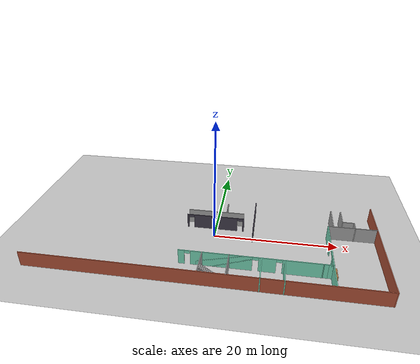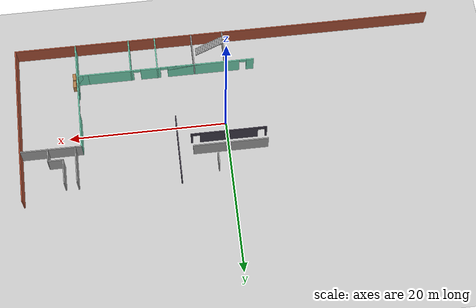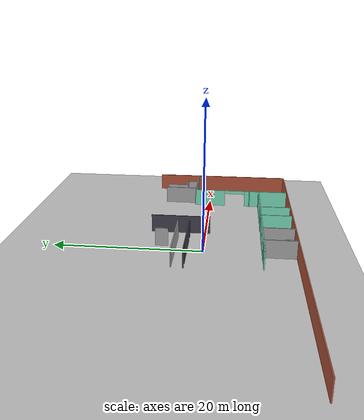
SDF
<sdf version="1.7">
 <world name="default">
  <model name="ground_plane">
   <static>1</static>
   <link name="link">
    <collision name="collision">
     <geometry><plane><normal>0 0 1</normal><size>100 100</size></plane></geometry>
     <surface>
      <contact><ode><kp>1e15</kp><kd>1e13</kd></ode></contact>
      <friction><ode><mu>1.0</mu><mu2>1.0</mu2></ode></friction>
     </surface>
    </collision>
    <visual name="visual">
     <cast_shadows>0</cast_shadows>
     <geometry><plane><normal>0 0 1</normal><size>100 100</size></plane></geometry>
     <material>
      <script><uri>file://media/materials/scripts/gazebo.material</uri><name>Gazebo/Grey</name></script>
     </material>
    </visual>
   </link>
  </model>
  <model name="circuit_launch">
   <pose>-0.874625 6.32825 0 0 -0 0</pose>
   <link name="Stairs_1">
    <visual name="Stairs_1_Visual_0">
     <pose>3.56304 -17.2142 0.083333 0 -0 -1.5708</pose>
     <geometry><box><size>1 0.233333 0.166667</size></box></geometry>
     <material>
      <script><uri>file://media/materials/scripts/gazebo.material</uri><name>Gazebo/Grey</name></script>
      <ambient>1 1 1 1</ambient>
     </material>
     <meta><layer>0</layer></meta>
    </visual>
    <collision name="Stairs_1_Collision_0">
     <geometry><box><size>1 0.233333 0.166667</size></box></geometry>
     <pose>3.56304 -17.2142 0.083333 0 -0 -1.5708</pose>
    </collision>
    <visual name="Stairs_1_Visual_1">
     <pose>3.32971 -17.2142 0.25 0 -0 -1.5708</pose>
     <geometry><box><size>1 0.233333 0.166667</size></box></geometry>
     <material>
      <script><uri>file://media/materials/scripts/gazebo.material</uri><name>Gazebo/Grey</name></script>
      <ambient>1 1 1 1</ambient>
     </material>
     <meta><layer>0</layer></meta>
    </visual>
    <collision name="Stairs_1_Collision_1">
     <geometry><box><size>1 0.233333 0.166667</size></box></geometry>
     <pose>3.32971 -17.2142 0.25 0 -0 -1.5708</pose>
    </collision>
    <visual name="Stairs_1_Visual_2">
     <pose>3.09638 -17.2142 0.416667 0 -0 -1.5708</pose>
     <geometry><box><size>1 0.233333 0.166667</size></box></geometry>
     <material>
      <script><uri>file://media/materials/scripts/gazebo.material</uri><name>Gazebo/Grey</name></script>
      <ambient>1 1 1 1</ambient>
     </material>
     <meta><layer>0</layer></meta>
    </visual>
    <collision name="Stairs_1_Collision_2">
     <geometry><box><size>1 0.233333 0.166667</size></box></geometry>
     <pose>3.09638 -17.2142 0.416667 0 -0 -1.5708</pose>
    </collision>
    <visual name="Stairs_1_Visual_3">
     <pose>2.86304 -17.2142 0.583333 0 -0 -1.5708</pose>
     <geometry><box><size>1 0.233333 0.166667</size></box></geometry>
     <material>
      <script><uri>file://media/materials/scripts/gazebo.material</uri><name>Gazebo/Grey</name></script>
      <ambient>1 1 1 1</ambient>
     </material>
     <meta><layer>0</layer></meta>
    </visual>
    <collision name="Stairs_1_Collision_3">
     <geometry><box><size>1 0.233333 0.166667</size></box></geometry>
     <pose>2.86304 -17.2142 0.583333 0 -0 -1.5708</pose>
    </collision>
    <visual name="Stairs_1_Visual_4">
     <pose>2.62971 -17.2142 0.75 0 -0 -1.5708</pose>
     <geometry><box><size>1 0.233333 0.166667</size></box></geometry>
     <material>
      <script><uri>file://media/materials/scripts/gazebo.material</uri><name>Gazebo/Grey</name></script>
      <ambient>1 1 1 1</ambient>
     </material>
     <meta><layer>0</layer></meta>
    </visual>
    <collision name="Stairs_1_Collision_4">
     <geometry><box><size>1 0.233333 0.166667</size></box></geometry>
     <pose>2.62971 -17.2142 0.75 0 -0 -1.5708</pose>
    </collision>
    <visual name="Stairs_1_Visual_5">
     <pose>2.39638 -17.2142 0.916667 0 -0 -1.5708</pose>
     <geometry><box><size>1 0.233333 0.166667</size></box></geometry>
     <material>
      <script><uri>file://media/materials/scripts/gazebo.material</uri><name>Gazebo/Grey</name></script>
      <ambient>1 1 1 1</ambient>
     </material>
     <meta><layer>0</layer></meta>
    </visual>
    <collision name="Stairs_1_Collision_5">
     <geometry><box><size>1 0.233333 0.166667</size></box></geometry>
     <pose>2.39638 -17.2142 0.916667 0 -0 -1.5708</pose>
    </collision>
    <visual name="Stairs_1_Visual_6">
     <pose>2.16304 -17.2142 1.08333 0 -0 -1.5708</pose>
     <geometry><box><size>1 0.233333 0.166667</size></box></geometry>
     <material>
      <script><uri>file://media/materials/scripts/gazebo.material</uri><name>Gazebo/Grey</name></script>
      <ambient>1 1 1 1</ambient>
     </material>
     <meta><layer>0</layer></meta>
    </visual>
    <collision name="Stairs_1_Collision_6">
     <geometry><box><size>1 0.233333 0.166667</size></box></geometry>
     <pose>2.16304 -17.2142 1.08333 0 -0 -1.5708</pose>
    </collision>
    <visual name="Stairs_1_Visual_7">
     <pose>1.92971 -17.2142 1.25 0 -0 -1.5708</pose>
     <geometry><box><size>1 0.233333 0.166667</size></box></geometry>
     <material>
      <script><uri>file://media/materials/scripts/gazebo.material</uri><name>Gazebo/Grey</name></script>
      <ambient>1 1 1 1</ambient>
     </material>
     <meta><layer>0</layer></meta>
    </visual>
    <collision name="Stairs_1_Collision_7">
     <geometry><box><size>1 0.233333 0.166667</size></box></geometry>
     <pose>1.92971 -17.2142 1.25 0 -0 -1.5708</pose>
    </collision>
    <visual name="Stairs_1_Visual_8">
     <pose>1.69638 -17.2142 1.41667 0 -0 -1.5708</pose>
     <geometry><box><size>1 0.233333 0.166667</size></box></geometry>
     <material>
      <script><uri>file://media/materials/scripts/gazebo.material</uri><name>Gazebo/Grey</name></script>
      <ambient>1 1 1 1</ambient>
     </material>
     <meta><layer>0</layer></meta>
    </visual>
    <collision name="Stairs_1_Collision_8">
     <geometry><box><size>1 0.233333 0.166667</size></box></geometry>
     <pose>1.69638 -17.2142 1.41667 0 -0 -1.5708</pose>
    </collision>
    <visual name="Stairs_1_Visual_9">
     <pose>1.46304 -17.2142 1.58333 0 -0 -1.5708</pose>
     <geometry><box><size>1 0.233333 0.166667</size></box></geometry>
     <material>
      <script><uri>file://media/materials/scripts/gazebo.material</uri><name>Gazebo/Grey</name></script>
      <ambient>1 1 1 1</ambient>
     </material>
     <meta><layer>0</layer></meta>
    </visual>
    <collision name="Stairs_1_Collision_9">
     <geometry><box><size>1 0.233333 0.166667</size></box></geometry>
     <pose>1.46304 -17.2142 1.58333 0 -0 -1.5708</pose>
    </collision>
    <visual name="Stairs_1_Visual_10">
     <pose>1.22971 -17.2142 1.75 0 -0 -1.5708</pose>
     <geometry><box><size>1 0.233333 0.166667</size></box></geometry>
     <material>
      <script><uri>file://media/materials/scripts/gazebo.material</uri><name>Gazebo/Grey</name></script>
      <ambient>1 1 1 1</ambient>
     </material>
     <meta><layer>0</layer></meta>
    </visual>
    <collision name="Stairs_1_Collision_10">
     <geometry><box><size>1 0.233333 0.166667</size></box></geometry>
     <pose>1.22971 -17.2142 1.75 0 -0 -1.5708</pose>
    </collision>
    <visual name="Stairs_1_Visual_11">
     <pose>0.996375 -17.2142 1.91667 0 -0 -1.5708</pose>
     <geometry><box><size>1 0.233333 0.166667</size></box></geometry>
     <material>
      <script><uri>file://media/materials/scripts/gazebo.material</uri><name>Gazebo/Grey</name></script>
      <ambient>1 1 1 1</ambient>
     </material>
     <meta><layer>0</layer></meta>
    </visual>
    <collision name="Stairs_1_Collision_11">
     <geometry><box><size>1 0.233333 0.166667</size></box></geometry>
     <pose>0.996375 -17.2142 1.91667 0 -0 -1.5708</pose>
    </collision>
    <visual name="Stairs_1_Visual_12">
     <pose>0.763042 -17.2142 2.08333 0 -0 -1.5708</pose>
     <geometry><box><size>1 0.233333 0.166667</size></box></geometry>
     <material>
      <script><uri>file://media/materials/scripts/gazebo.material</uri><name>Gazebo/Grey</name></script>
      <ambient>1 1 1 1</ambient>
     </material>
     <meta><layer>0</layer></meta>
    </visual>
    <collision name="Stairs_1_Collision_12">
     <geometry><box><size>1 0.233333 0.166667</size></box></geometry>
     <pose>0.763042 -17.2142 2.08333 0 -0 -1.5708</pose>
    </collision>
    <visual name="Stairs_1_Visual_13">
     <pose>0.529709 -17.2142 2.25 0 -0 -1.5708</pose>
     <geometry><box><size>1 0.233333 0.166667</size></box></geometry>
     <material>
      <script><uri>file://media/materials/scripts/gazebo.material</uri><name>Gazebo/Grey</name></script>
      <ambient>1 1 1 1</ambient>
     </material>
     <meta><layer>0</layer></meta>
    </visual>
    <collision name="Stairs_1_Collision_13">
     <geometry><box><size>1 0.233333 0.166667</size></box></geometry>
     <pose>0.529709 -17.2142 2.25 0 -0 -1.5708</pose>
    </collision>
    <visual name="Stairs_1_Visual_14">
     <pose>0.296375 -17.2142 2.41667 0 -0 -1.5708</pose>
     <geometry><box><size>1 0.233333 0.166667</size></box></geometry>
     <material>
      <script><uri>file://media/materials/scripts/gazebo.material</uri><name>Gazebo/Grey</name></script>
      <ambient>1 1 1 1</ambient>
     </material>
     <meta><layer>0</layer></meta>
    </visual>
    <collision name="Stairs_1_Collision_14">
     <geometry><box><size>1 0.233333 0.166667</size></box></geometry>
     <pose>0.296375 -17.2142 2.41667 0 -0 -1.5708</pose>
    </collision>
   </link>
   <link name="Wall_135">
    <collision name="Wall_135_Collision">
     <geometry><box><size>3.25 0.15 2.5</size></box></geometry>
     <pose>0 0 1.25 0 -0 0</pose>
    </collision>
    <visual name="Wall_135_Visual">
     <pose>0 0 1.25 0 -0 0</pose>
     <geometry><box><size>3.25 0.15 2.5</size></box></geometry>
     <material>
      <script><uri>file://media/materials/scripts/gazebo.material</uri><name>Gazebo/Grey</name></script>
      <ambient>1 1 1 1</ambient>
     </material>
     <meta><layer>0</layer></meta>
    </visual>
    <pose>21.684 -0.963464 0 0 -0 -1.5708</pose>
   </link>
   <link name="Wall_136">
    <collision name="Wall_136_Collision">
     <geometry><box><size>2 0.15 2.5</size></box></geometry>
     <pose>0 0 1.25 0 -0 0</pose>
    </collision>
    <visual name="Wall_136_Visual">
     <pose>0 0 1.25 0 -0 0</pose>
     <geometry><box><size>2 0.15 2.5</size></box></geometry>
     <material>
      <script><uri>file://media/materials/scripts/gazebo.material</uri><name>Gazebo/Grey</name></script>
      <ambient>1 1 1 1</ambient>
     </material>
     <meta><layer>0</layer></meta>
    </visual>
    <pose>22.609 -2.51346 0 0 -0 0</pose>
   </link>
   <link name="Wall_137">
    <collision name="Wall_137_Collision">
     <geometry><box><size>1.75 0.15 2.5</size></box></geometry>
     <pose>0 0 1.25 0 -0 0</pose>
    </collision>
    <visual name="Wall_137_Visual">
     <pose>0 0 1.25 0 -0 0</pose>
     <geometry><box><size>1.75 0.15 2.5</size></box></geometry>
     <material>
      <script><uri>file://media/materials/scripts/gazebo.material</uri><name>Gazebo/Grey</name></script>
      <ambient>1 1 1 1</ambient>
     </material>
     <meta><layer>0</layer></meta>
    </visual>
    <pose>23.534 -3.31346 0 0 -0 -1.5708</pose>
   </link>
   <link name="Wall_20">
    <collision name="Wall_20_Collision">
     <geometry><box><size>9.5 0.15 2.5</size></box></geometry>
     <pose>0 0 1.25 0 -0 0</pose>
    </collision>
    <visual name="Wall_20_Visual">
     <pose>0 0 1.25 0 -0 0</pose>
     <geometry><box><size>9.5 0.15 2.5</size></box></geometry>
     <material>
      <script><uri>file://media/materials/scripts/gazebo.material</uri><name>Gazebo/Grey</name></script>
      <ambient>1 1 1 1</ambient>
     </material>
     <meta><layer>0</layer></meta>
    </visual>
    <pose>0.66157 -2.61076 0 0 -0 0</pose>
   </link>
   <link name="Wall_208">
    <collision name="Wall_208_Collision">
     <geometry><box><size>4.5 0.15 2.5</size></box></geometry>
     <pose>0 0 1.25 0 -0 0</pose>
    </collision>
    <visual name="Wall_208_Visual">
     <pose>0 0 1.25 0 -0 0</pose>
     <geometry><box><size>4.5 0.15 2.5</size></box></geometry>
     <material>
      <script><uri>file://media/materials/scripts/gazebo.material</uri><name>Gazebo/Grey</name></script>
      <ambient>1 1 1 1</ambient>
     </material>
     <meta><layer>0</layer></meta>
    </visual>
    <pose>0.066664 -16.1884 0 0 -0 -1.5708</pose>
   </link>
   <link name="Wall_210">
    <collision name="Wall_210_Collision">
     <geometry><box><size>4.5 0.15 2.5</size></box></geometry>
     <pose>0 0 1.25 0 -0 0</pose>
    </collision>
    <visual name="Wall_210_Visual">
     <pose>0 0 1.25 0 -0 0</pose>
     <geometry><box><size>4.5 0.15 2.5</size></box></geometry>
     <material>
      <script><uri>file://media/materials/scripts/gazebo.material</uri><name>Gazebo/Grey</name></script>
      <ambient>1 1 1 1</ambient>
     </material>
     <meta><layer>0</layer></meta>
    </visual>
    <pose>4.12964 -16.1839 0 0 -0 -1.5708</pose>
   </link>
   <link name="Wall_227">
    <collision name="Wall_227_Collision">
     <geometry><box><size>4.6374 0.15 2.5</size></box></geometry>
     <pose>0 0 1.25 0 -0 0</pose>
    </collision>
    <visual name="Wall_227_Visual">
     <pose>0 0 1.25 0 -0 0</pose>
     <geometry><box><size>4.6374 0.15 2.5</size></box></geometry>
     <material>
      <script><uri>file://media/materials/scripts/gazebo.material</uri><name>Gazebo/Grey</name></script>
      <ambient>0.435294 0.796078 0.67451 1</ambient>
     </material>
     <meta><layer>0</layer></meta>
    </visual>
    <pose>8.90387 -16.2159 0 0 -0 -1.5708</pose>
   </link>
   <link name="Wall_231">
    <collision name="Wall_231_Collision">
     <geometry><box><size>4.56795 0.15 2.5</size></box></geometry>
     <pose>0 0 1.25 0 -0 0</pose>
    </collision>
    <visual name="Wall_231_Visual">
     <pose>0 0 1.25 0 -0 0</pose>
     <geometry><box><size>4.56795 0.15 2.5</size></box></geometry>
     <material>
      <script><uri>file://media/materials/scripts/gazebo.material</uri><name>Gazebo/Grey</name></script>
      <ambient>0.435294 0.796078 0.67451 1</ambient>
     </material>
     <meta><layer>0</layer></meta>
    </visual>
    <pose>12.3272 -16.2274 0 0 -0 -1.5708</pose>
   </link>
   <link name="Wall_235">
    <collision name="Wall_235_Collision">
     <geometry><box><size>1.58774 0.15 2.5</size></box></geometry>
     <pose>0 0 1.25 0 -0 0</pose>
    </collision>
    <visual name="Wall_235_Visual">
     <pose>0 0 1.25 0 -0 0</pose>
     <geometry><box><size>1.58774 0.15 2.5</size></box></geometry>
     <material>
      <script><uri>file://media/materials/scripts/gazebo.material</uri><name>Gazebo/Grey</name></script>
      <ambient>0.435294 0.796078 0.67451 1</ambient>
     </material>
     <meta><layer>0</layer></meta>
    </visual>
    <pose>19.234 -13.2964 0 0 -0 -1.56926</pose>
   </link>
   <link name="Wall_237">
    <pose>18.5296 -14.0214 0 0 -0 0.008728</pose>
    <visual name="Wall_237_Visual_0">
     <pose>0 0 1.25 0 -0 0</pose>
     <geometry><box><size>1.56101 0.15 2.5</size></box></geometry>
     <material>
      <script><uri>file://media/materials/scripts/gazebo.material</uri><name>Gazebo/Grey</name></script>
      <ambient>0.435294 0.796078 0.67451 1</ambient>
     </material>
     <meta><layer>0</layer></meta>
    </visual>
    <collision name="Wall_237_Collision_0">
     <geometry><box><size>1.56101 0.15 2.5</size></box></geometry>
     <pose>0 0 1.25 0 -0 0</pose>
    </collision>
    <visual name="Wall_237_Visual_1">
     <pose>0.388137 0 1.25 0 -0 0</pose>
     <geometry><box><size>0.784736 0.15 2.5</size></box></geometry>
     <material>
      <script><uri>file://media/materials/scripts/gazebo.material</uri><name>Gazebo/Grey</name></script>
      <ambient>0.435294 0.796078 0.67451 1</ambient>
     </material>
     <meta><layer>0</layer></meta>
    </visual>
    <collision name="Wall_237_Collision_1">
     <geometry><box><size>0.784736 0.15 2.5</size></box></geometry>
     <pose>0.388137 0 1.25 0 -0 0</pose>
    </collision>
   </link>
   <link name="Wall_239">
    <collision name="Wall_239_Collision">
     <geometry><box><size>4.5 0.15 2.5</size></box></geometry>
     <pose>0 0 1.25 0 -0 0</pose>
    </collision>
    <visual name="Wall_239_Visual">
     <pose>0 0 1.25 0 -0 0</pose>
     <geometry><box><size>4.5 0.15 2.5</size></box></geometry>
     <material>
      <script><uri>file://media/materials/scripts/gazebo.material</uri><name>Gazebo/Grey</name></script>
      <ambient>0.435294 0.796078 0.67451 1</ambient>
     </material>
     <meta><layer>0</layer></meta>
    </visual>
    <pose>19.2351 -16.1902 0 0 -0 -1.5708</pose>
   </link>
   <link name="Wall_26">
    <collision name="Wall_26_Collision">
     <geometry><box><size>1.75 0.15 2.5</size></box></geometry>
     <pose>0 0 1.25 0 -0 0</pose>
    </collision>
    <visual name="Wall_26_Visual">
     <pose>0 0 1.25 0 -0 0</pose>
     <geometry><box><size>1.75 0.15 2.5</size></box></geometry>
     <material>
      <script><uri>file://media/materials/scripts/gazebo.material</uri><name>Gazebo/Grey</name></script>
      <ambient>1 1 1 1</ambient>
     </material>
     <meta><layer>0</layer></meta>
    </visual>
    <pose>2.38945 -0.703597 0 0 -0 -1.5708</pose>
   </link>
   <link name="Wall_51">
    <collision name="Wall_51_Collision">
     <geometry><box><size>54.1582 0.15 2.5</size></box></geometry>
     <pose>0 0 1.25 0 -0 0</pose>
    </collision>
    <visual name="Wall_51_Visual">
     <pose>0 0 1.25 0 -0 0</pose>
     <geometry><box><size>54.1582 0.15 2.5</size></box></geometry>
     <material>
      <script><uri>file://media/materials/scripts/gazebo.material</uri><name>Gazebo/Bricks</name></script>
      <ambient>1 1 1 1</ambient>
     </material>
     <meta><layer>0</layer></meta>
    </visual>
    <pose>-0.020714 -18.4097 0 0 -0 -0.000749</pose>
   </link>
   <link name="Wall_52">
    <collision name="Wall_52_Collision">
     <geometry><box><size>14.5 0.15 2.5</size></box></geometry>
     <pose>0 0 1.25 0 -0 0</pose>
    </collision>
    <visual name="Wall_52_Visual">
     <pose>0 0 1.25 0 -0 0</pose>
     <geometry><box><size>14.5 0.15 2.5</size></box></geometry>
     <material>
      <script><uri>file://media/materials/scripts/gazebo.material</uri><name>Gazebo/Bricks</name></script>
      <ambient>1 1 1 1</ambient>
     </material>
     <meta><layer>0</layer></meta>
    </visual>
    <pose>26.9834 -11.255 0 0 -0 1.5708</pose>
   </link>
   <link name="Wall_64">
    <collision name="Wall_64_Collision">
     <geometry><box><size>6.59561 0.15 2.5</size></box></geometry>
     <pose>0 0 1.25 0 -0 0</pose>
    </collision>
    <visual name="Wall_64_Visual">
     <pose>0 0 1.25 0 -0 0</pose>
     <geometry><box><size>6.59561 0.15 2.5</size></box></geometry>
     <material>
      <script><uri>file://media/materials/scripts/gazebo.material</uri><name>Gazebo/Bricks</name></script>
      <ambient>1 1 1 1</ambient>
     </material>
     <meta><layer>0</layer></meta>
    </visual>
    <pose>26.9632 -0.857211 0 0 -0 -1.56452</pose>
   </link>
   <link name="Wall_77">
    <pose>7.14917 -14.0275 0 0 -0 0</pose>
    <visual name="Wall_77_Visual_0">
     <pose>-10.2621 0 1.25 0 -0 0</pose>
     <geometry><box><size>0.975837 0.15 2.5</size></box></geometry>
     <material>
      <script><uri>file://media/materials/scripts/gazebo.material</uri><name>Gazebo/Grey</name></script>
      <ambient>0.435294 0.796078 0.67451 1</ambient>
     </material>
     <meta><layer>0</layer></meta>
    </visual>
    <collision name="Wall_77_Collision_0">
     <geometry><box><size>0.975837 0.15 2.5</size></box></geometry>
     <pose>-10.2621 0 1.25 0 -0 0</pose>
    </collision>
    <visual name="Wall_77_Visual_1">
     <pose>-4.21358 0 1.25 0 -0 0</pose>
     <geometry><box><size>9.32116 0.15 2.5</size></box></geometry>
     <material>
      <script><uri>file://media/materials/scripts/gazebo.material</uri><name>Gazebo/Grey</name></script>
      <ambient>0.435294 0.796078 0.67451 1</ambient>
     </material>
     <meta><layer>0</layer></meta>
    </visual>
    <collision name="Wall_77_Collision_1">
     <geometry><box><size>9.32116 0.15 2.5</size></box></geometry>
     <pose>-4.21358 0 1.25 0 -0 0</pose>
    </collision>
    <visual name="Wall_77_Visual_2">
     <pose>-3.78532 0 1.25 0 -0 0</pose>
     <geometry><box><size>8.46463 0.15 2.5</size></box></geometry>
     <material>
      <script><uri>file://media/materials/scripts/gazebo.material</uri><name>Gazebo/Grey</name></script>
      <ambient>0.435294 0.796078 0.67451 1</ambient>
     </material>
     <meta><layer>0</layer></meta>
    </visual>
    <collision name="Wall_77_Collision_2">
     <geometry><box><size>8.46463 0.15 2.5</size></box></geometry>
     <pose>-3.78532 0 1.25 0 -0 0</pose>
    </collision>
    <visual name="Wall_77_Visual_3">
     <pose>2.64336 0 1.25 0 -0 0</pose>
     <geometry><box><size>2.59272 0.15 2.5</size></box></geometry>
     <material>
      <script><uri>file://media/materials/scripts/gazebo.material</uri><name>Gazebo/Grey</name></script>
      <ambient>0.435294 0.796078 0.67451 1</ambient>
     </material>
     <meta><layer>0</layer></meta>
    </visual>
    <collision name="Wall_77_Collision_3">
     <geometry><box><size>2.59272 0.15 2.5</size></box></geometry>
     <pose>2.64336 0 1.25 0 -0 0</pose>
    </collision>
    <visual name="Wall_77_Visual_4">
     <pose>7.79486 0 1.25 0 -0 0</pose>
     <geometry><box><size>5.91028 0.15 2.5</size></box></geometry>
     <material>
      <script><uri>file://media/materials/scripts/gazebo.material</uri><name>Gazebo/Grey</name></script>
      <ambient>0.435294 0.796078 0.67451 1</ambient>
     </material>
     <meta><layer>0</layer></meta>
    </visual>
    <collision name="Wall_77_Collision_4">
     <geometry><box><size>5.91028 0.15 2.5</size></box></geometry>
     <pose>7.79486 0 1.25 0 -0 0</pose>
    </collision>
    <visual name="Wall_77_Visual_5">
     <pose>-9.3459 0 2.25 0 -0 0</pose>
     <geometry><box><size>0.856526 0.15 0.5</size></box></geometry>
     <material>
      <script><uri>file://media/materials/scripts/gazebo.material</uri><name>Gazebo/Grey</name></script>
      <ambient>0.435294 0.796078 0.67451 1</ambient>
     </material>
     <meta><layer>0</layer></meta>
    </visual>
    <collision name="Wall_77_Collision_5">
     <geometry><box><size>0.856526 0.15 0.5</size></box></geometry>
     <pose>-9.3459 0 2.25 0 -0 0</pose>
    </collision>
    <visual name="Wall_77_Visual_6">
     <pose>0.896997 0 2.25 0 -0 0</pose>
     <geometry><box><size>0.9 0.15 0.5</size></box></geometry>
     <material>
      <script><uri>file://media/materials/scripts/gazebo.material</uri><name>Gazebo/Grey</name></script>
      <ambient>0.435294 0.796078 0.67451 1</ambient>
     </material>
     <meta><layer>0</layer></meta>
    </visual>
    <collision name="Wall_77_Collision_6">
     <geometry><box><size>0.9 0.15 0.5</size></box></geometry>
     <pose>0.896997 0 2.25 0 -0 0</pose>
    </collision>
    <visual name="Wall_77_Visual_7">
     <pose>0.896997 0 2.25 0 -0 0</pose>
     <geometry><box><size>0.9 0.15 0.5</size></box></geometry>
     <material>
      <script><uri>file://media/materials/scripts/gazebo.material</uri><name>Gazebo/Grey</name></script>
      <ambient>0.435294 0.796078 0.67451 1</ambient>
     </material>
     <meta><layer>0</layer></meta>
    </visual>
    <collision name="Wall_77_Collision_7">
     <geometry><box><size>0.9 0.15 0.5</size></box></geometry>
     <pose>0.896997 0 2.25 0 -0 0</pose>
    </collision>
    <visual name="Wall_77_Visual_8">
     <pose>4.38972 0 2.25 0 -0 0</pose>
     <geometry><box><size>0.9 0.15 0.5</size></box></geometry>
     <material>
      <script><uri>file://media/materials/scripts/gazebo.material</uri><name>Gazebo/Grey</name></script>
      <ambient>0.435294 0.796078 0.67451 1</ambient>
     </material>
     <meta><layer>0</layer></meta>
    </visual>
    <collision name="Wall_77_Collision_8">
     <geometry><box><size>0.9 0.15 0.5</size></box></geometry>
     <pose>4.38972 0 2.25 0 -0 0</pose>
    </collision>
   </link>
   <link name="Wall_79">
    <pose>19.2482 -8.32544 0 0 -0 1.5672</pose>
    <visual name="Wall_79_Visual_0">
     <pose>-3.90656 0 1.25 0 -0 0</pose>
     <geometry><box><size>0.841025 0.15 2.5</size></box></geometry>
     <material>
      <script><uri>file://media/materials/scripts/gazebo.material</uri><name>Gazebo/Grey</name></script>
      <ambient>0.435294 0.796078 0.67451 1</ambient>
     </material>
     <meta><layer>0</layer></meta>
    </visual>
    <collision name="Wall_79_Collision_0">
     <geometry><box><size>0.841025 0.15 2.5</size></box></geometry>
     <pose>-3.90656 0 1.25 0 -0 0</pose>
    </collision>
    <visual name="Wall_79_Visual_1">
     <pose>1.96925 0 1.25 0 -0 0</pose>
     <geometry><box><size>4.71564 0.15 2.5</size></box></geometry>
     <material>
      <script><uri>file://media/materials/scripts/gazebo.material</uri><name>Gazebo/Grey</name></script>
      <ambient>0.435294 0.796078 0.67451 1</ambient>
     </material>
     <meta><layer>0</layer></meta>
    </visual>
    <collision name="Wall_79_Collision_1">
     <geometry><box><size>4.71564 0.15 2.5</size></box></geometry>
     <pose>1.96925 0 1.25 0 -0 0</pose>
    </collision>
    <visual name="Wall_79_Visual_2">
     <pose>-1.93731 0 2.25 0 -0 0</pose>
     <geometry><box><size>3.09748 0.15 0.5</size></box></geometry>
     <material>
      <script><uri>file://media/materials/scripts/gazebo.material</uri><name>Gazebo/Grey</name></script>
      <ambient>0.435294 0.796078 0.67451 1</ambient>
     </material>
     <meta><layer>0</layer></meta>
    </visual>
    <collision name="Wall_79_Collision_2">
     <geometry><box><size>3.09748 0.15 0.5</size></box></geometry>
     <pose>-1.93731 0 2.25 0 -0 0</pose>
    </collision>
   </link>
   <link name="Wall_80">
    <collision name="Wall_80_Collision">
     <geometry><box><size>7.86988 0.15 2.5</size></box></geometry>
     <pose>0 0 1.25 0 -0 0</pose>
    </collision>
    <visual name="Wall_80_Visual">
     <pose>0 0 1.25 0 -0 0</pose>
     <geometry><box><size>7.86988 0.15 2.5</size></box></geometry>
     <material>
      <script><uri>file://media/materials/scripts/gazebo.material</uri><name>Gazebo/Grey</name></script>
      <ambient>1 1 1 1</ambient>
     </material>
     <meta><layer>0</layer></meta>
    </visual>
    <pose>23.1234 -4.07668 0 0 -0 -0.000849</pose>
   </link>
   <link name="Wall_82">
    <collision name="Wall_82_Collision">
     <geometry><box><size>8.25 0.15 2.5</size></box></geometry>
     <pose>0 0 1.25 0 -0 0</pose>
    </collision>
    <visual name="Wall_82_Visual">
     <pose>0 0 1.25 0 -0 0</pose>
     <geometry><box><size>8.25 0.15 2.5</size></box></geometry>
     <material>
      <script><uri>file://media/materials/scripts/gazebo.material</uri><name>Gazebo/Grey</name></script>
      <ambient>0.239216 0.219608 0.27451 1</ambient>
     </material>
     <meta><layer>0</layer></meta>
    </visual>
    <pose>7.21096 -2.83129 0 0 -0 -1.5708</pose>
   </link>
   <link name="Wall_9">
    <pose>0.726084 -4.18148 0 0 -0 0</pose>
    <visual name="Wall_9_Visual_0">
     <pose>-4.69913 0 1.25 0 -0 0</pose>
     <geometry><box><size>0.26635 0.15 2.5</size></box></geometry>
     <material>
      <script><uri>file://media/materials/scripts/gazebo.material</uri><name>Gazebo/Grey</name></script>
      <ambient>0.239216 0.219608 0.27451 1</ambient>
     </material>
     <meta><layer>0</layer></meta>
    </visual>
    <collision name="Wall_9_Collision_0">
     <geometry><box><size>0.26635 0.15 2.5</size></box></geometry>
     <pose>-4.69913 0 1.25 0 -0 0</pose>
    </collision>
    <visual name="Wall_9_Visual_1">
     <pose>0.005616 0 1.25 0 -0 0</pose>
     <geometry><box><size>7.34314 0.15 2.5</size></box></geometry>
     <material>
      <script><uri>file://media/materials/scripts/gazebo.material</uri><name>Gazebo/Grey</name></script>
      <ambient>0.239216 0.219608 0.27451 1</ambient>
     </material>
     <meta><layer>0</layer></meta>
    </visual>
    <collision name="Wall_9_Collision_1">
     <geometry><box><size>7.34314 0.15 2.5</size></box></geometry>
     <pose>0.005616 0 1.25 0 -0 0</pose>
    </collision>
    <visual name="Wall_9_Visual_2">
     <pose>4.70475 0 1.25 0 -0 0</pose>
     <geometry><box><size>0.255118 0.15 2.5</size></box></geometry>
     <material>
      <script><uri>file://media/materials/scripts/gazebo.material</uri><name>Gazebo/Grey</name></script>
      <ambient>0.239216 0.219608 0.27451 1</ambient>
     </material>
     <meta><layer>0</layer></meta>
    </visual>
    <collision name="Wall_9_Collision_2">
     <geometry><box><size>0.255118 0.15 2.5</size></box></geometry>
     <pose>4.70475 0 1.25 0 -0 0</pose>
    </collision>
    <visual name="Wall_9_Visual_3">
     <pose>-4.11596 0 2.25 0 -0 0</pose>
     <geometry><box><size>0.9 0.15 0.5</size></box></geometry>
     <material>
      <script><uri>file://media/materials/scripts/gazebo.material</uri><name>Gazebo/Grey</name></script>
      <ambient>0.239216 0.219608 0.27451 1</ambient>
     </material>
     <meta><layer>0</layer></meta>
    </visual>
    <collision name="Wall_9_Collision_3">
     <geometry><box><size>0.9 0.15 0.5</size></box></geometry>
     <pose>-4.11596 0 2.25 0 -0 0</pose>
    </collision>
    <visual name="Wall_9_Visual_4">
     <pose>4.12719 0 2.25 0 -0 0</pose>
     <geometry><box><size>0.9 0.15 0.5</size></box></geometry>
     <material>
      <script><uri>file://media/materials/scripts/gazebo.material</uri><name>Gazebo/Grey</name></script>
      <ambient>0.239216 0.219608 0.27451 1</ambient>
     </material>
     <meta><layer>0</layer></meta>
    </visual>
    <collision name="Wall_9_Collision_4">
     <geometry><box><size>0.9 0.15 0.5</size></box></geometry>
     <pose>4.12719 0 2.25 0 -0 0</pose>
    </collision>
   </link>
   <link name="Wall_95">
    <collision name="Wall_95_Collision">
     <geometry><box><size>4.75 0.15 2.5</size></box></geometry>
     <pose>0 0 1.25 0 -0 0</pose>
    </collision>
    <visual name="Wall_95_Visual">
     <pose>0 0 1.25 0 -0 0</pose>
     <geometry><box><size>4.75 0.15 2.5</size></box></geometry>
     <material>
      <script><uri>file://media/materials/scripts/gazebo.material</uri><name>Gazebo/Grey</name></script>
      <ambient>1 1 1 1</ambient>
     </material>
     <meta><layer>0</layer></meta>
    </visual>
    <pose>20.084 -1.71346 0 0 -0 1.5708</pose>
   </link>
   <static>1</static>
  </model>
  <model name="bookshelf">
   <static>1</static>
   <link name="link">
    <inertial><mass>1</mass></inertial>
    <collision name="back">
     <pose>0 0.005 0.6 0 -0 0</pose>
     <geometry><box><size>0.9 0.01 1.2</size></box></geometry>
    </collision>
    <visual name="visual1">
     <pose>0 0.005 0.6 0 -0 0</pose>
     <geometry><box><size>0.9 0.01 1.2</size></box></geometry>
     <material>
      <script><uri>file://media/materials/scripts/gazebo.material</uri><name>Gazebo/Wood</name></script>
     </material>
    </visual>
    <collision name="left_side">
     <pose>0.45 -0.195 0.6 0 -0 0</pose>
     <geometry><box><size>0.02 0.4 1.2</size></box></geometry>
    </collision>
    <visual name="visual2">
     <pose>0.45 -0.195 0.6 0 -0 0</pose>
     <geometry><box><size>0.02 0.4 1.2</size></box></geometry>
     <material>
      <script><uri>file://media/materials/scripts/gazebo.material</uri><name>Gazebo/Wood</name></script>
     </material>
    </visual>
    <collision name="right_side">
     <pose>-0.45 -0.195 0.6 0 -0 0</pose>
     <geometry><box><size>0.02 0.4 1.2</size></box></geometry>
    </collision>
    <visual name="visual3">
     <pose>-0.45 -0.195 0.6 0 -0 0</pose>
     <geometry><box><size>0.02 0.4 1.2</size></box></geometry>
     <material>
      <script><uri>file://media/materials/scripts/gazebo.material</uri><name>Gazebo/Wood</name></script>
     </material>
    </visual>
    <collision name="bottom">
     <pose>0 -0.195 0.03 0 -0 0</pose>
     <geometry><box><size>0.88 0.4 0.06</size></box></geometry>
    </collision>
    <visual name="visual4">
     <pose>0 -0.195 0.03 0 -0 0</pose>
     <geometry><box><size>0.88 0.4 0.06</size></box></geometry>
     <material>
      <script><uri>file://media/materials/scripts/gazebo.material</uri><name>Gazebo/Wood</name></script>
     </material>
    </visual>
    <collision name="top">
     <pose>0 -0.195 1.19 0 -0 0</pose>
     <geometry><box><size>0.88 0.4 0.02</size></box></geometry>
    </collision>
    <visual name="visual5">
     <pose>0 -0.195 1.19 0 -0 0</pose>
     <geometry><box><size>0.88 0.4 0.02</size></box></geometry>
     <material>
      <script><uri>file://media/materials/scripts/gazebo.material</uri><name>Gazebo/Wood</name></script>
     </material>
    </visual>
    <collision name="low_shelf">
     <pose>0 -0.195 0.43 0 -0 0</pose>
     <geometry><box><size>0.88 0.4 0.02</size></box></geometry>
    </collision>
    <visual name="visual6">
     <pose>0 -0.195 0.43 0 -0 0</pose>
     <geometry><box><size>0.88 0.4 0.02</size></box></geometry>
     <material>
      <script><uri>file://media/materials/scripts/gazebo.material</uri><name>Gazebo/Wood</name></script>
     </material>
    </visual>
    <collision name="high_shelf">
     <pose>0 -0.195 0.8 0 -0 0</pose>
     <geometry><box><size>0.88 0.4 0.02</size></box></geometry>
    </collision>
    <visual name="visual7">
     <pose>0 -0.195 0.8 0 -0 0</pose>
     <geometry><box><size>0.88 0.4 0.02</size></box></geometry>
     <material>
      <script><uri>file://media/materials/scripts/gazebo.material</uri><name>Gazebo/Wood</name></script>
     </material>
    </visual>
   </link>
   <pose>18.6408 -7.2385 0 0 -0 1.57237</pose>
  </model>
  <model name="bookshelf_0">
   <static>1</static>
   <link name="link">
    <inertial><mass>1</mass></inertial>
    <collision name="back">
     <pose>0 0.005 0.6 0 -0 0</pose>
     <geometry><box><size>0.9 0.01 1.2</size></box></geometry>
    </collision>
    <visual name="visual1">
     <pose>0 0.005 0.6 0 -0 0</pose>
     <geometry><box><size>0.9 0.01 1.2</size></box></geometry>
     <material>
      <script><uri>file://media/materials/scripts/gazebo.material</uri><name>Gazebo/Wood</name></script>
     </material>
    </visual>
    <collision name="left_side">
     <pose>0.45 -0.195 0.6 0 -0 0</pose>
     <geometry><box><size>0.02 0.4 1.2</size></box></geometry>
    </collision>
    <visual name="visual2">
     <pose>0.45 -0.195 0.6 0 -0 0</pose>
     <geometry><box><size>0.02 0.4 1.2</size></box></geometry>
     <material>
      <script><uri>file://media/materials/scripts/gazebo.material</uri><name>Gazebo/Wood</name></script>
     </material>
    </visual>
    <collision name="right_side">
     <pose>-0.45 -0.195 0.6 0 -0 0</pose>
     <geometry><box><size>0.02 0.4 1.2</size></box></geometry>
    </collision>
    <visual name="visual3">
     <pose>-0.45 -0.195 0.6 0 -0 0</pose>
     <geometry><box><size>0.02 0.4 1.2</size></box></geometry>
     <material>
      <script><uri>file://media/materials/scripts/gazebo.material</uri><name>Gazebo/Wood</name></script>
     </material>
    </visual>
    <collision name="bottom">
     <pose>0 -0.195 0.03 0 -0 0</pose>
     <geometry><box><size>0.88 0.4 0.06</size></box></geometry>
    </collision>
    <visual name="visual4">
     <pose>0 -0.195 0.03 0 -0 0</pose>
     <geometry><box><size>0.88 0.4 0.06</size></box></geometry>
     <material>
      <script><uri>file://media/materials/scripts/gazebo.material</uri><name>Gazebo/Wood</name></script>
     </material>
    </visual>
    <collision name="top">
     <pose>0 -0.195 1.19 0 -0 0</pose>
     <geometry><box><size>0.88 0.4 0.02</size></box></geometry>
    </collision>
    <visual name="visual5">
     <pose>0 -0.195 1.19 0 -0 0</pose>
     <geometry><box><size>0.88 0.4 0.02</size></box></geometry>
     <material>
      <script><uri>file://media/materials/scripts/gazebo.material</uri><name>Gazebo/Wood</name></script>
     </material>
    </visual>
    <collision name="low_shelf">
     <pose>0 -0.195 0.43 0 -0 0</pose>
     <geometry><box><size>0.88 0.4 0.02</size></box></geometry>
    </collision>
    <visual name="visual6">
     <pose>0 -0.195 0.43 0 -0 0</pose>
     <geometry><box><size>0.88 0.4 0.02</size></box></geometry>
     <material>
      <script><uri>file://media/materials/scripts/gazebo.material</uri><name>Gazebo/Wood</name></script>
     </material>
    </visual>
    <collision name="high_shelf">
     <pose>0 -0.195 0.8 0 -0 0</pose>
     <geometry><box><size>0.88 0.4 0.02</size></box></geometry>
    </collision>
    <visual name="visual7">
     <pose>0 -0.195 0.8 0 -0 0</pose>
     <geometry><box><size>0.88 0.4 0.02</size></box></geometry>
     <material>
      <script><uri>file://media/materials/scripts/gazebo.material</uri><name>Gazebo/Wood</name></script>
     </material>
    </visual>
   </link>
   <pose>18.6244 -8.31067 0 0 -0 1.58575</pose>
  </model>
 </world>
</sdf>
